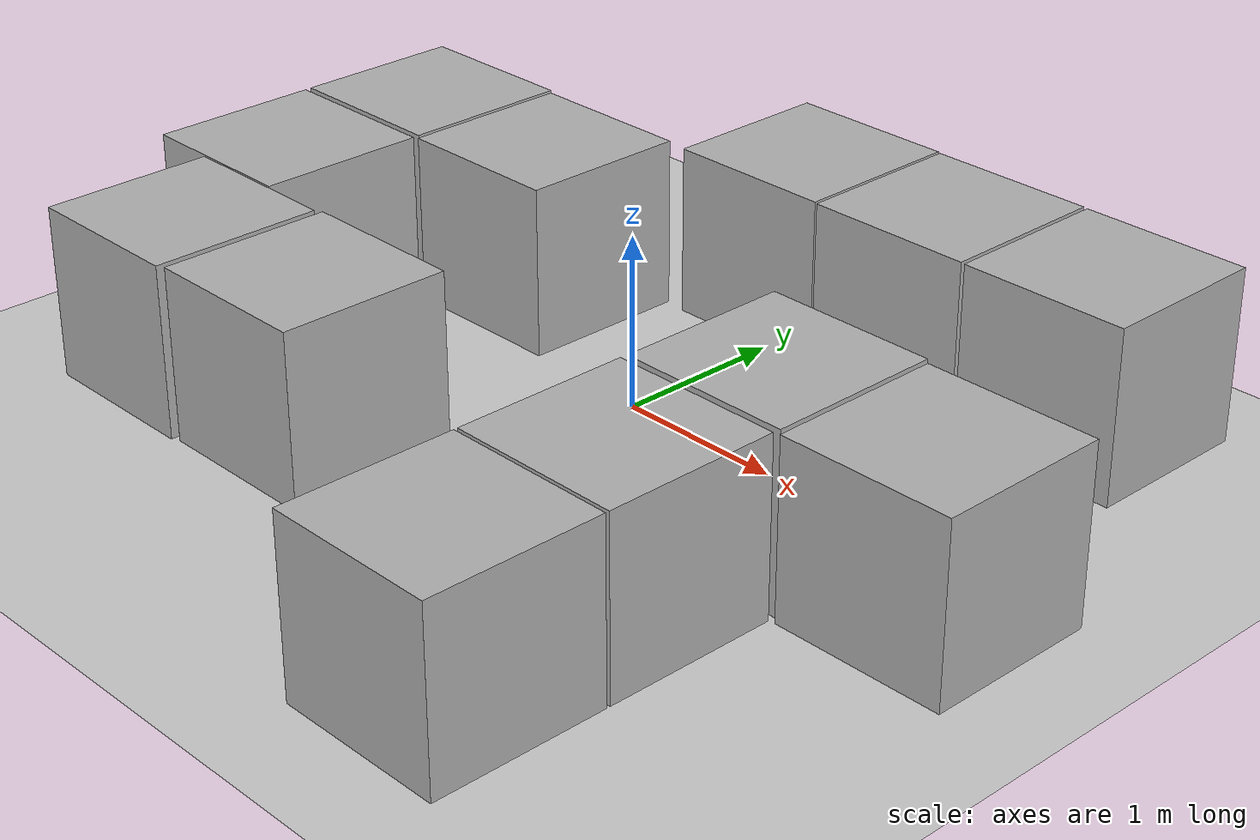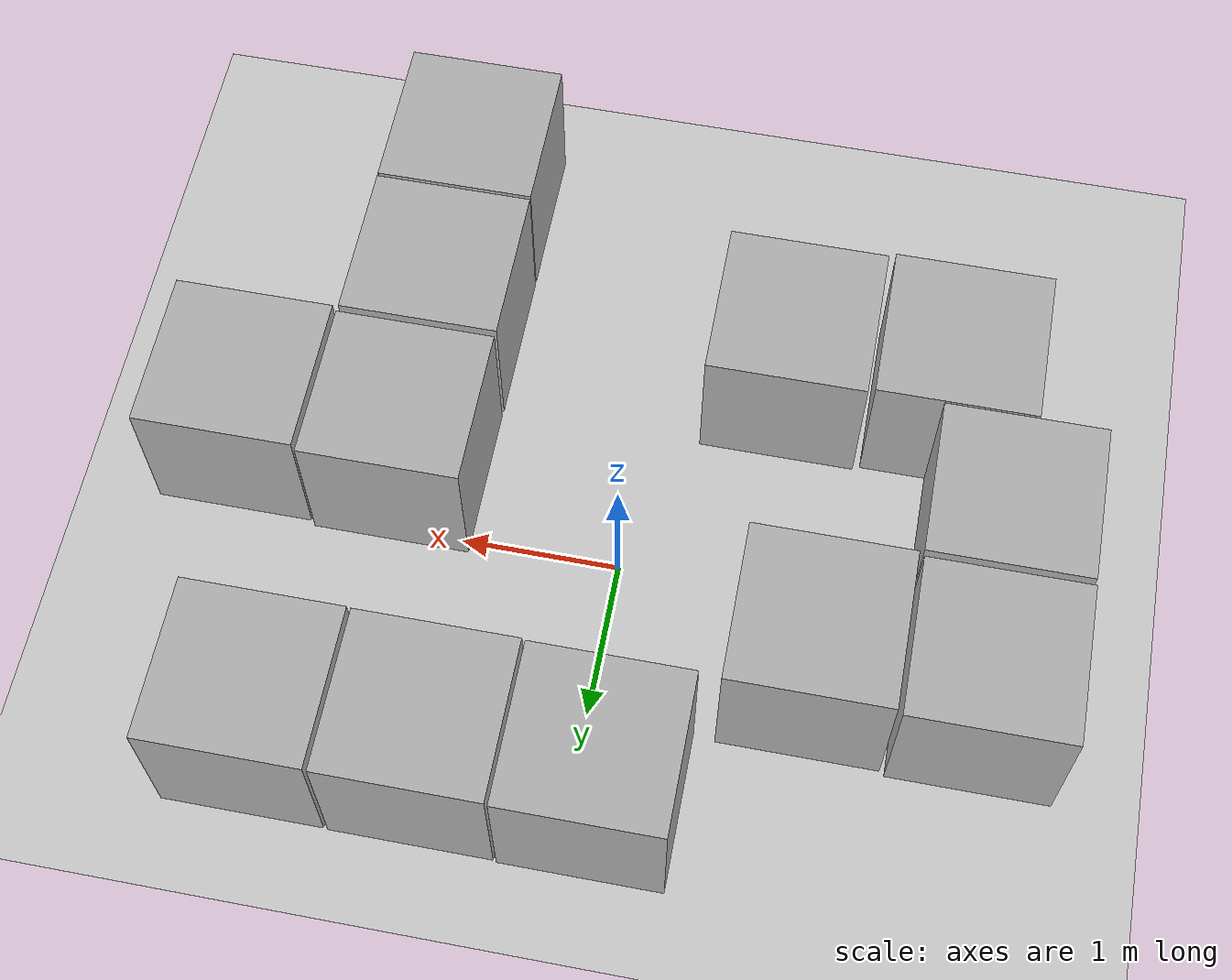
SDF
<?xml version="1.0" ?>
<sdf version="1.9">
  <world name="empty">
    <physics name="1ms" type="ignored">
      <max_step_size>0.004</max_step_size>
      <real_time_factor>1</real_time_factor>
      <real_time_update_rate>250</real_time_update_rate>
    </physics>
    <plugin name="gz::sim::systems::Physics" filename="ignition-gazebo-physics-system"/>
    <plugin name="gz::sim::systems::UserCommands" filename="ignition-gazebo-user-commands-system"/>
    <plugin name="gz::sim::systems::SceneBroadcaster" filename="ignition-gazebo-scene-broadcaster-system"/>
    <plugin name="gz::sim::systems::Contact" filename="ignition-gazebo-contact-system"/>

    <gravity>0 0 -9.8</gravity>
    <magnetic_field>6e-06 2.3e-05 -4.2e-05</magnetic_field>
    <atmosphere type="adiabatic"/>

    <scene>
      <ambient>0.4 0.4 0.4 1</ambient>
      <background>0.7 0.7 0.7 1</background>
      <shadows>true</shadows>
    </scene>

    <!-- GROUND PLANE -->
    <model name="ground_plane">
      <static>true</static>
      <link name="link">
        <collision name="collision">
          <geometry>
            <plane>
              <normal>0 0 1</normal>
              <size>100 100</size>
            </plane>
          </geometry>
        </collision>
        <visual name="visual">
          <geometry>
            <plane>
              <normal>0 0 1</normal>
              <size>100 100</size>
            </plane>
          </geometry>
          <material>
            <ambient>0.8 0.8 0.8 1</ambient>
            <diffuse>0.8 0.8 0.8 1</diffuse>
            <specular>0.8 0.8 0.8 1</specular>
          </material>
        </visual>
      </link>
    </model>

    <!-- SUN LIGHT -->
    <light name="sun" type="directional">
      <pose>0 0 10 0 -0 0</pose>
      <cast_shadows>true</cast_shadows>
      <intensity>1</intensity>
      <direction>-0.5 0.1 -0.9</direction>
      <diffuse>0.8 0.8 0.8 1</diffuse>
      <specular>0.2 0.2 0.2 1</specular>
      <attenuation>
        <range>1000</range>
        <linear>0.01</linear>
        <constant>0.9</constant>
        <quadratic>0.001</quadratic>
      </attenuation>
    </light>

    <!-- STATIC OBSTACLES (ALL SET TO STATIC=TRUE TO PREVENT CPU LAG) -->
    <model name="box">
      <static>true</static>
      <pose>1.44966 -0.434488 0.5 0 0 0</pose>
      <link name="box_link">
        <collision name="box_collision">
          <geometry><box><size>1 1 1</size></box></geometry>
        </collision>
        <visual name="box_visual">
          <geometry><box><size>1 1 1</size></box></geometry>
          <material>
            <ambient>0.3 0.3 0.3 1</ambient>
            <diffuse>0.7 0.7 0.7 1</diffuse>
          </material>
        </visual>
      </link>
    </model>

    <model name="box_0">
      <static>true</static>
      <pose>1.44569 -1.47532 0.5 0 0 0</pose>
      <link name="box_link">
        <collision name="box_collision">
          <geometry><box><size>1 1 1</size></box></geometry>
        </collision>
        <visual name="box_visual">
          <geometry><box><size>1 1 1</size></box></geometry>
          <material>
            <ambient>0.3 0.3 0.3 1</ambient>
            <diffuse>0.7 0.7 0.7 1</diffuse>
          </material>
        </visual>
      </link>
    </model>

    <model name="box_1">
      <static>true</static>
      <pose>-0.853315 -1.47532 0.5 0 0 0</pose>
      <link name="box_link">
        <collision name="box_collision">
          <geometry><box><size>1 1 1</size></box></geometry>
        </collision>
        <visual name="box_visual">
          <geometry><box><size>1 1 1</size></box></geometry>
          <material>
            <ambient>0.3 0.3 0.3 1</ambient>
            <diffuse>0.7 0.7 0.7 1</diffuse>
          </material>
        </visual>
      </link>
    </model>

    <model name="box_1_1">
      <static>true</static>
      <pose>1.44569 -2.49608 0.5 0 0 0</pose>
      <link name="box_link">
        <collision name="box_collision">
          <geometry><box><size>1 1 1</size></box></geometry>
        </collision>
        <visual name="box_visual">
          <geometry><box><size>1 1 1</size></box></geometry>
          <material>
            <ambient>0.3 0.3 0.3 1</ambient>
            <diffuse>0.7 0.7 0.7 1</diffuse>
          </material>
        </visual>
      </link>
    </model>

    <model name="box_1_2">
      <static>true</static>
      <pose>-1.89617 -1.49764 0.5 0 0 0</pose>
      <link name="box_link">
        <collision name="box_collision">
          <geometry><box><size>1 1 1</size></box></geometry>
        </collision>
        <visual name="box_visual">
          <geometry><box><size>1 1 1</size></box></geometry>
          <material>
            <ambient>0.3 0.3 0.3 1</ambient>
            <diffuse>0.7 0.7 0.7 1</diffuse>
          </material>
        </visual>
      </link>
    </model>

    <model name="box_1_3">
      <static>true</static>
      <pose>-2.31618 -0.484593 0.5 0 0 0</pose>
      <link name="box_link">
        <collision name="box_collision">
          <geometry><box><size>1 1 1</size></box></geometry>
        </collision>
        <visual name="box_visual">
          <geometry><box><size>1 1 1</size></box></geometry>
          <material>
            <ambient>0.3 0.3 0.3 1</ambient>
            <diffuse>0.7 0.7 0.7 1</diffuse>
          </material>
        </visual>
      </link>
    </model>

    <model name="box_1_4">
      <static>true</static>
      <pose>-2.31852 0.554742 0.5 0 0 0</pose>
      <link name="box_link">
        <collision name="box_collision">
          <geometry><box><size>1 1 1</size></box></geometry>
        </collision>
        <visual name="box_visual">
          <geometry><box><size>1 1 1</size></box></geometry>
          <material>
            <ambient>0.3 0.3 0.3 1</ambient>
            <diffuse>0.7 0.7 0.7 1</diffuse>
          </material>
        </visual>
      </link>
    </model>

    <model name="box_1_5">
      <static>true</static>
      <pose>-1.28856 0.527155 0.5 0 0 0</pose>
      <link name="box_link">
        <collision name="box_collision">
          <geometry><box><size>1 1 1</size></box></geometry>
        </collision>
        <visual name="box_visual">
          <geometry><box><size>1 1 1</size></box></geometry>
          <material>
            <ambient>0.3 0.3 0.3 1</ambient>
            <diffuse>0.7 0.7 0.7 1</diffuse>
          </material>
        </visual>
      </link>
    </model>

    <model name="box_1_6">
      <static>true</static>
      <pose>-0.154919 1.50437 0.5 0 0 0</pose>
      <link name="box_link">
        <collision name="box_collision">
          <geometry><box><size>1 1 1</size></box></geometry>
        </collision>
        <visual name="box_visual">
          <geometry><box><size>1 1 1</size></box></geometry>
          <material>
            <ambient>0.3 0.3 0.3 1</ambient>
            <diffuse>0.7 0.7 0.7 1</diffuse>
          </material>
        </visual>
      </link>
    </model>

    <model name="box_1_7">
      <static>true</static>
      <pose>0.865793 1.49521 0.5 0 0 0</pose>
      <link name="box_link">
        <collision name="box_collision">
          <geometry><box><size>1 1 1</size></box></geometry>
        </collision>
        <visual name="box_visual">
          <geometry><box><size>1 1 1</size></box></geometry>
          <material>
            <ambient>0.3 0.3 0.3 1</ambient>
            <diffuse>0.7 0.7 0.7 1</diffuse>
          </material>
        </visual>
      </link>
    </model>

    <model name="box_1_8">
      <static>true</static>
      <pose>1.89146 1.4904 0.5 0 0 0</pose>
      <link name="box_link">
        <collision name="box_collision">
          <geometry><box><size>1 1 1</size></box></geometry>
        </collision>
        <visual name="box_visual">
          <geometry><box><size>1 1 1</size></box></geometry>
          <material>
            <ambient>0.3 0.3 0.3 1</ambient>
            <diffuse>0.7 0.7 0.7 1</diffuse>
          </material>
        </visual>
      </link>
    </model>

    <model name="box_1_9">
      <static>true</static>
      <pose>2.48002 -0.468352 0.5 0 0 0</pose>
      <link name="box_link">
        <collision name="box_collision">
          <geometry><box><size>1 1 1</size></box></geometry>
        </collision>
        <visual name="box_visual">
          <geometry><box><size>1 1 1</size></box></geometry>
          <material>
            <ambient>0.3 0.3 0.3 1</ambient>
            <diffuse>0.7 0.7 0.7 1</diffuse>
          </material>
        </visual>
      </link>
    </model>

  </world>
</sdf>
